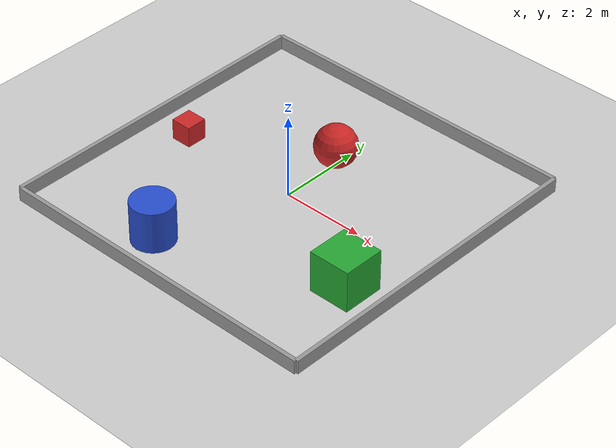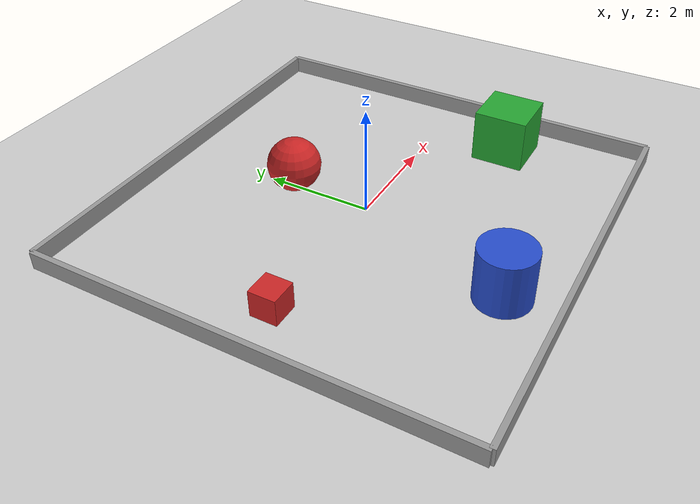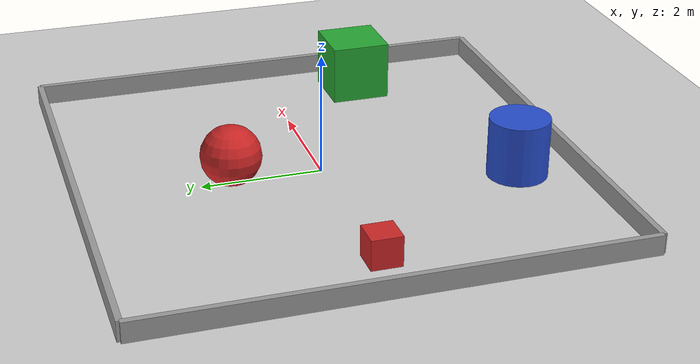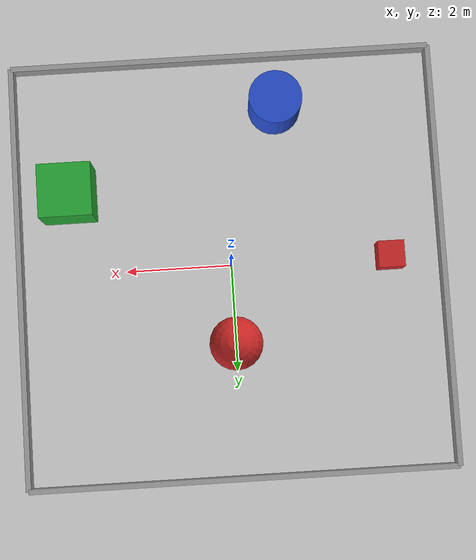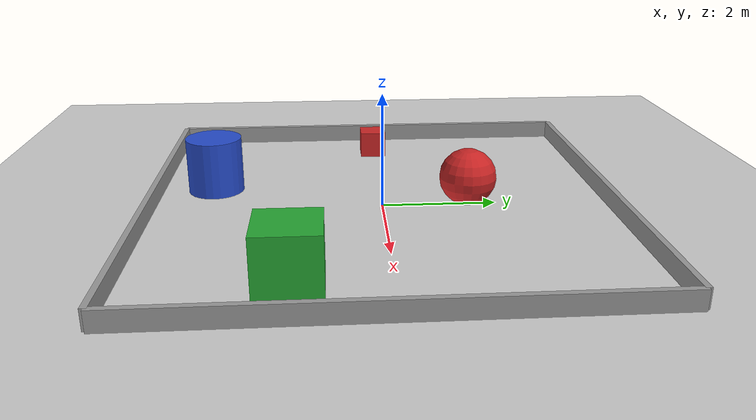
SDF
<sdf version='1.4'>
  <world name='default'>
    <!-- A global light source -->
    <include>
      <uri>model://sun</uri>
    </include>
    <!-- A ground plane -->
    <include>
      <uri>model://ground_plane</uri>
    </include>
    <!-- Light weight simulation settings -->
    <physics type='ode'>
      <max_step_size>0.01</max_step_size>
      <real_time_factor>1</real_time_factor>
      <real_time_update_rate>100</real_time_update_rate>
      <gravity>0 0 -9.8</gravity>
    </physics>

    <!-- A red ball -->
    <model name="sphere">
      <pose>0 1.5 0.5 0 0 0</pose>
      <link name="link">
        <collision name="collision">
          <geometry>
            <sphere>
              <radius>0.5</radius>
            </sphere>
          </geometry>
        </collision>
        <visual name="visual">
          <geometry>
            <sphere>
              <radius>0.5</radius>
            </sphere>
          </geometry>
          <material>
            <script>
              <name>Gazebo/RedBright</name>
            </script>
          </material>
        </visual>
      </link>
    </model>

    <!-- A green cube -->
    <model name="cube">
      <pose>3.0 -1.5 0.5 0 0 0</pose>
      <link name="link">
        <collision name="collision">
          <geometry>
            <box>
              <size>1 1 1</size>
            </box>
          </geometry>
        </collision>
        <visual name="visual">
          <geometry>
            <box>
              <size>1 1 1</size>
            </box>
          </geometry>
          <material>
            <script>
              <name>Gazebo/Green</name>
            </script>
          </material>
        </visual>
      </link>
    </model>

    <!-- A blue cylinder -->
    <model name="cylinder">
      <pose>-1.0 -3.0 0.5 0 0 0</pose>
      <link name="link">
        <collision name="collision">
          <geometry>
            <cylinder>
              <radius>0.5</radius>
              <length>1.0</length>
            </cylinder>
          </geometry>
        </collision>
        <visual name="visual">
          <geometry>
            <cylinder>
              <radius>0.5</radius>
              <length>1.0</length>
            </cylinder>
          </geometry>
          <material>
            <script>
              <name>Gazebo/Blue</name>
            </script>
          </material>
        </visual>
      </link>
    </model>

    <!-- A red small cube -->
    <model name="cube">
      <pose>-3.0 0.0 0.25 0 0 0</pose>
      <link name="link">
        <collision name="collision">
          <geometry>
            <box>
              <size>0.5 0.5 0.5</size>
            </box>
          </geometry>
        </collision>
        <visual name="visual">
          <geometry>
            <box>
              <size>0.5 0.5 0.5</size>
            </box>
          </geometry>
          <material>
            <script>
              <name>Gazebo/Red</name>
            </script>
          </material>
        </visual>
      </link>
    </model>

    <!-- wall -->
    <model name='grey_wall_0'>
      <static>1</static>
      <link name='link'>
        <pose>0 0 0.165 0 0 0</pose>
        <collision name='collision'>
          <geometry>
            <box>
              <size>8 0.1 0.33</size>
            </box>
          </geometry>
          <max_contacts>10</max_contacts>
          <surface>
            <bounce/>
            <friction>
              <ode/>
            </friction>
            <contact>
              <ode/>
            </contact>
          </surface>
        </collision>
        <visual name='visual'>
          <cast_shadows>0</cast_shadows>
          <geometry>
            <box>
              <size>8 0.1 0.33</size>
            </box>
          </geometry>
          <material>
            <script>
              <uri>model://grey_wall/materials/scripts</uri>
              <uri>model://grey_wall/materials/textures</uri>
              <name>vrc/grey_wall</name>
            </script>
          </material>
        </visual>
        <velocity_decay>
          <linear>0</linear>
          <angular>0</angular>
        </velocity_decay>
        <self_collide>0</self_collide>
        <kinematic>0</kinematic>
        <gravity>1</gravity>
      </link>
      <pose>0 4 0 0 -0 0</pose>
    </model>

    <model name='grey_wall_1'>
      <static>1</static>
      <link name='link'>
        <pose>0 0 0.165 0 0 0</pose>
        <collision name='collision'>
          <geometry>
            <box>
              <size>8 0.1 0.33</size>
            </box>
          </geometry>
          <max_contacts>10</max_contacts>
          <surface>
            <bounce/>
            <friction>
              <ode/>
            </friction>
            <contact>
              <ode/>
            </contact>
          </surface>
        </collision>
        <visual name='visual'>
          <cast_shadows>0</cast_shadows>
          <geometry>
            <box>
              <size>8 0.1 0.33</size>
            </box>
          </geometry>
          <material>
            <script>
              <uri>model://grey_wall/materials/scripts</uri>
              <uri>model://grey_wall/materials/textures</uri>
              <name>vrc/grey_wall</name>
            </script>
          </material>
        </visual>
        <velocity_decay>
          <linear>0</linear>
          <angular>0</angular>
        </velocity_decay>
        <self_collide>0</self_collide>
        <kinematic>0</kinematic>
        <gravity>1</gravity>
      </link>
      <pose>0 -4 0 0 -0 0</pose>
    </model>

    <model name='grey_wall_2'>
      <static>1</static>
      <link name='link'>
        <pose>0 0 0.165 0 0 0</pose>
        <collision name='collision'>
          <geometry>
            <box>
              <size>8 0.1 0.33</size>
            </box>
          </geometry>
          <max_contacts>10</max_contacts>
          <surface>
            <bounce/>
            <friction>
              <ode/>
            </friction>
            <contact>
              <ode/>
            </contact>
          </surface>
        </collision>
        <visual name='visual'>
          <cast_shadows>0</cast_shadows>
          <geometry>
            <box>
              <size>8 0.1 0.33</size>
            </box>
          </geometry>
          <material>
            <script>
              <uri>model://grey_wall/materials/scripts</uri>
              <uri>model://grey_wall/materials/textures</uri>
              <name>vrc/grey_wall</name>
            </script>
          </material>
        </visual>
        <velocity_decay>
          <linear>0</linear>
          <angular>0</angular>
        </velocity_decay>
        <self_collide>0</self_collide>
        <kinematic>0</kinematic>
        <gravity>1</gravity>
      </link>
      <pose>4 0 0 0 -0 1.57102</pose>
    </model>

    <model name='grey_wall_3'>
      <static>1</static>
      <link name='link'>
        <pose>0 0 0.165 0 0 0</pose>
        <collision name='collision'>
          <geometry>
            <box>
              <size>8 0.1 0.33</size>
            </box>
          </geometry>
          <max_contacts>10</max_contacts>
          <surface>
            <bounce/>
            <friction>
              <ode/>
            </friction>
            <contact>
              <ode/>
            </contact>
          </surface>
        </collision>
        <visual name='visual'>
          <cast_shadows>0</cast_shadows>
          <geometry>
            <box>
              <size>8 0.1 0.33</size>
            </box>
          </geometry>
          <material>
            <script>
              <uri>model://grey_wall/materials/scripts</uri>
              <uri>model://grey_wall/materials/textures</uri>
              <name>vrc/grey_wall</name>
            </script>
          </material>
        </visual>
        <velocity_decay>
          <linear>0</linear>
          <angular>0</angular>
        </velocity_decay>
        <self_collide>0</self_collide>
        <kinematic>0</kinematic>
        <gravity>1</gravity>
      </link>
      <pose>-4 0 0 0 0 1.57102</pose>
    </model>
  </world>
</sdf>
